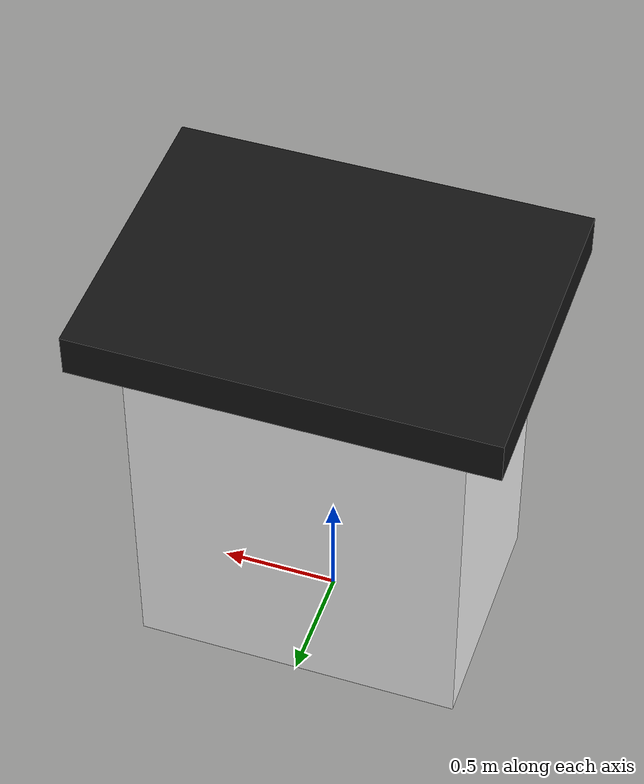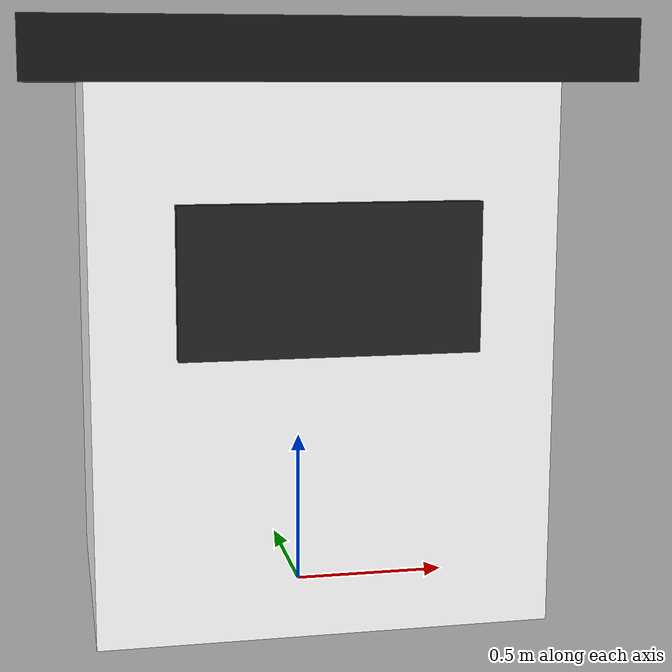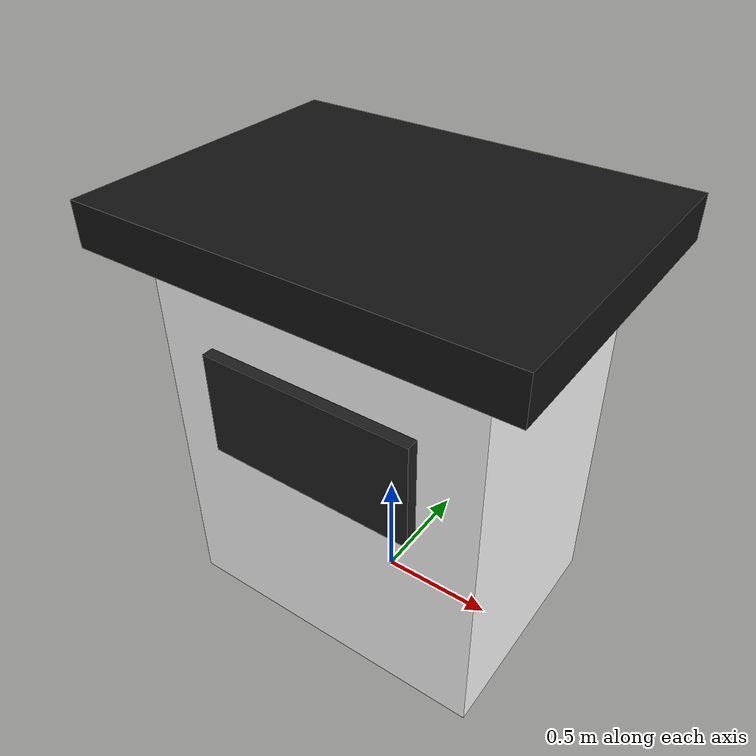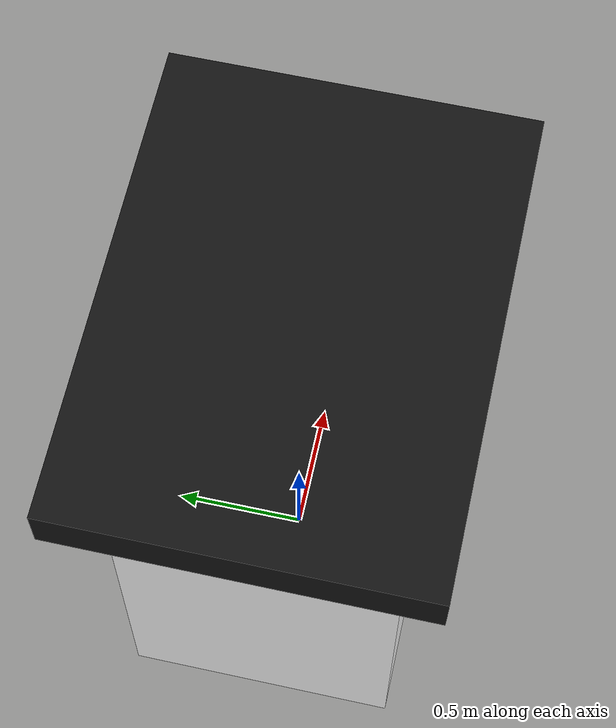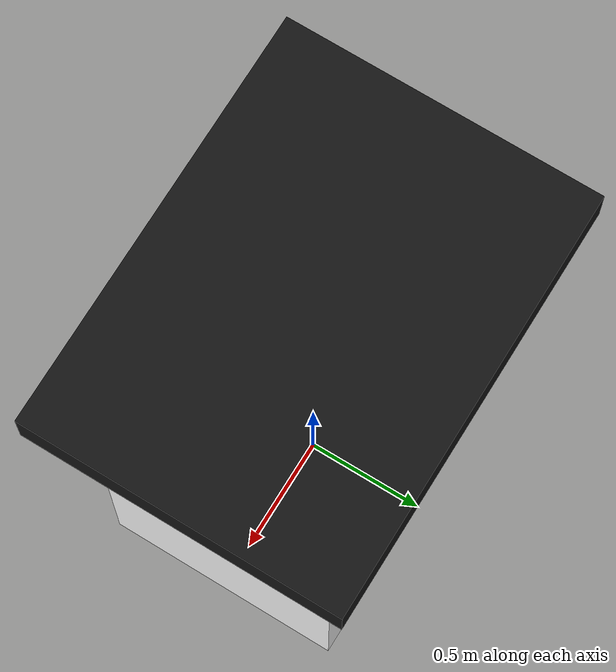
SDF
<?xml version="1.0" ?>
<sdf version="1.9">
  <model name="start_kiosk">
    <static>true</static>
    <link name="link">
      <collision name="body_collision">
        <pose>0 0 0.85 0 0 0</pose>
        <geometry>
          <box>
            <size>1.40 1.00 1.70</size>
          </box>
        </geometry>
      </collision>
      <collision name="roof_collision">
        <pose>0 0 1.76 0 0 0</pose>
        <geometry>
          <box>
            <size>1.75 1.30 0.18</size>
          </box>
        </geometry>
      </collision>
      <visual name="body_visual">
        <pose>0 0 0.85 0 0 0</pose>
        <geometry>
          <box>
            <size>1.40 1.00 1.70</size>
          </box>
        </geometry>
        <material>
          <ambient>0.97 0.97 0.97 1</ambient>
          <diffuse>0.97 0.97 0.97 1</diffuse>
        </material>
      </visual>
      <visual name="roof_visual">
        <pose>0 0 1.76 0 0 0</pose>
        <geometry>
          <box>
            <size>1.75 1.30 0.18</size>
          </box>
        </geometry>
        <material>
          <ambient>0.08 0.08 0.08 1</ambient>
          <diffuse>0.08 0.08 0.08 1</diffuse>
        </material>
      </visual>
      <visual name="front_panel_visual">
        <pose>0 -0.52 1.10 0 0 0</pose>
        <geometry>
          <box>
            <size>0.90 0.06 0.45</size>
          </box>
        </geometry>
        <material>
          <ambient>0.12 0.12 0.12 1</ambient>
          <diffuse>0.12 0.12 0.12 1</diffuse>
        </material>
      </visual>
    </link>
  </model>
</sdf>
